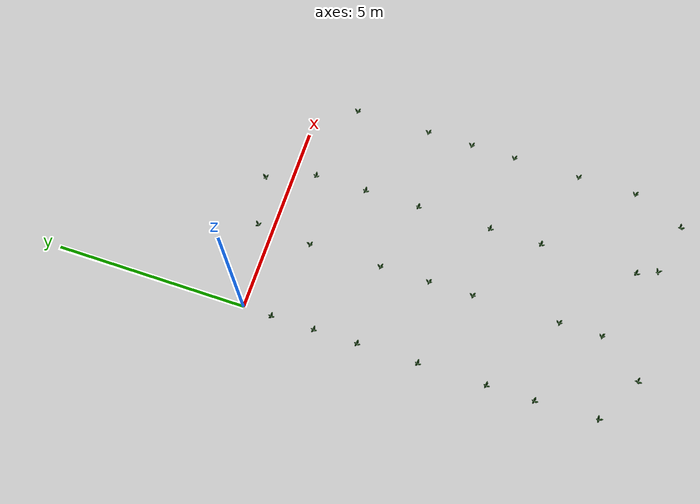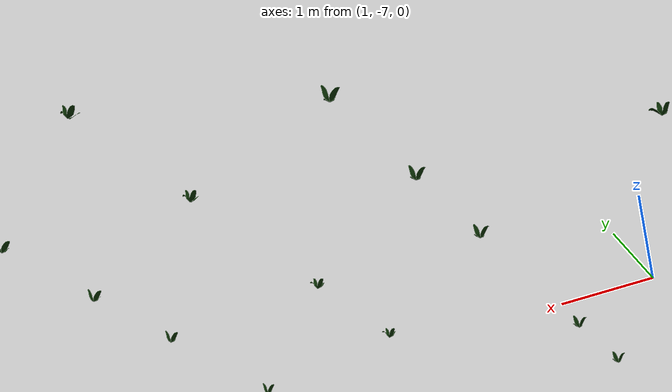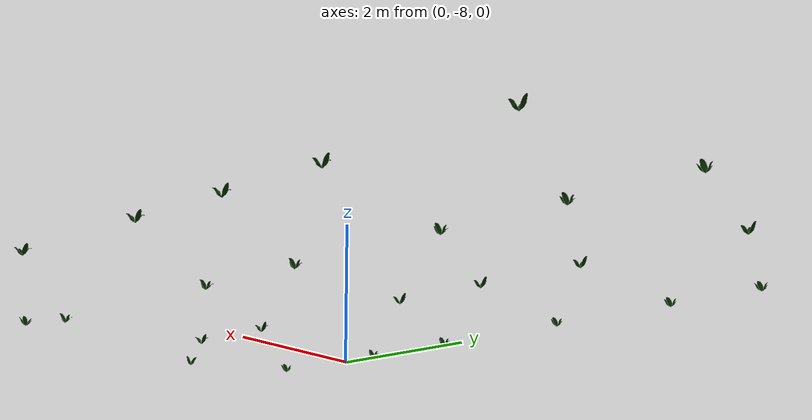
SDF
<sdf version='1.6'>
  <model name='weed_array'>
  <static>true</static>
    <link name='base_link'>
      <visual name='base_link_visual'>
        <pose frame=''>0 0 0 0 0 0</pose>
        <geometry>
          <mesh>
            <scale>1 1 1</scale>
            <uri>model://weed_array/weed.dae</uri>
          </mesh>
        </geometry>
      </visual>
    </link>
  </model>
</sdf>
